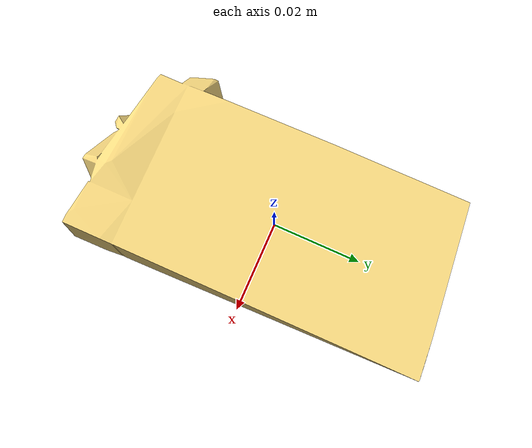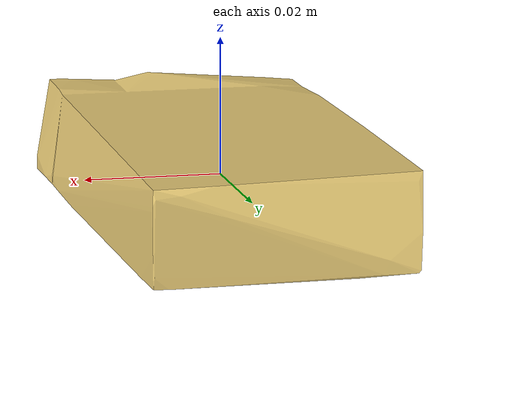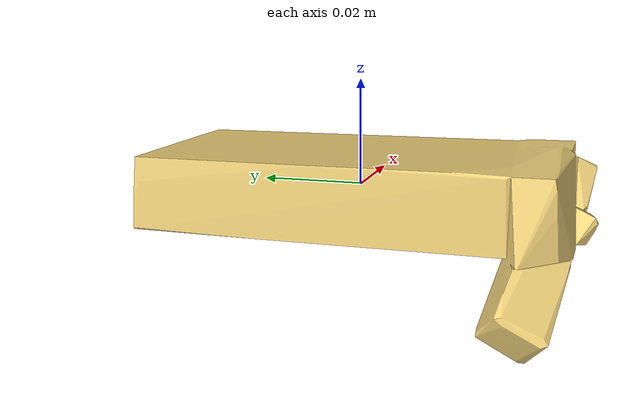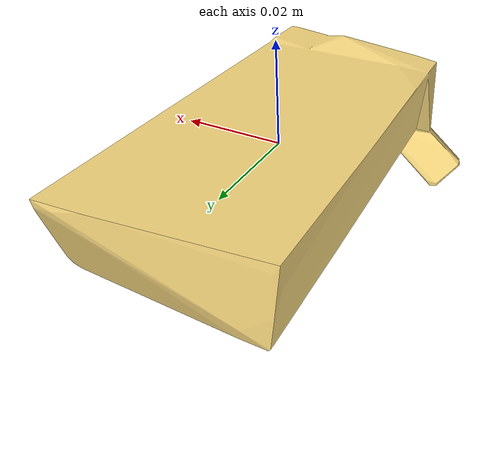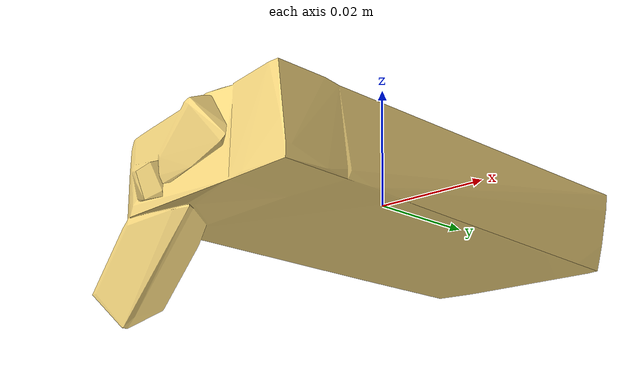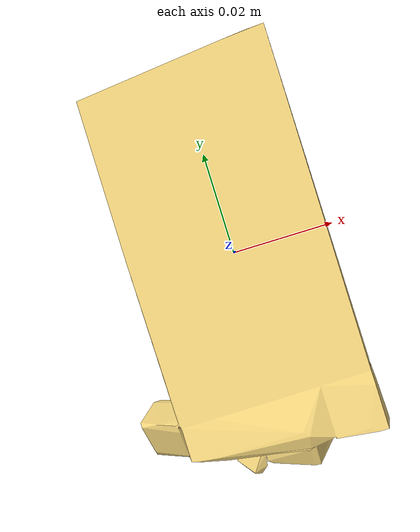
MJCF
<mujoco model="blob003">
    <compiler angle="radian" />
    <size njmax="500" nconmax="100" />
    <asset>
        <mesh name="003_coll" file="003_coll.stl" scale="0.0064 0.0064 0.0064" />
    </asset>
    <worldbody>
        <geom type="mesh" rgba="0.96 0.84 0.49 1" mesh="003_coll" />
    </worldbody>
</mujoco>
